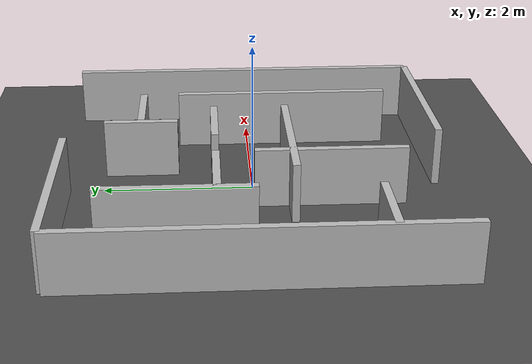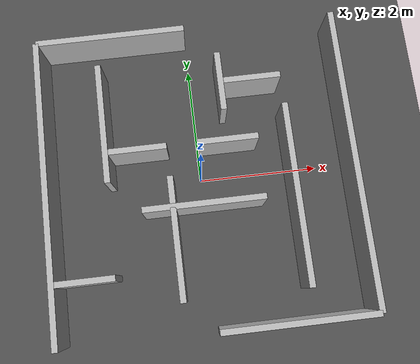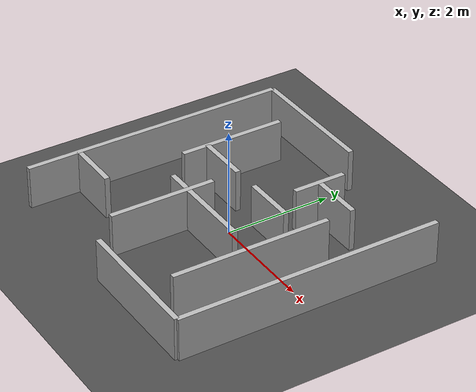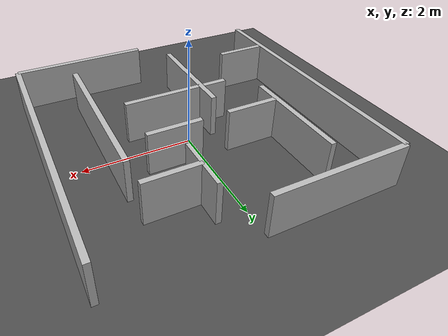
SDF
<?xml version="1.0" ?>
<sdf version="1.8">
  <world name="complex_5x5_maze">
    <physics name="1ms" type="ignored">
      <max_step_size>0.001</max_step_size>
      <real_time_factor>1.0</real_time_factor>
    </physics>

    <plugin filename="gz-sim-physics-system" name="gz::sim::systems::Physics"/>
    <plugin filename="gz-sim-user-commands-system" name="gz::sim::systems::UserCommands"/>
    <plugin filename="gz-sim-scene-broadcaster-system" name="gz::sim::systems::SceneBroadcaster"/>

    <light type="directional" name="sun">
      <cast_shadows>false</cast_shadows>
      <pose>0 0 10 0 0 0</pose>
      <direction>-0.5 0.1 -0.9</direction>
    </light>

    <model name="ground_plane">
      <static>true</static>
      <link name="link">
        <collision name="collision">
          <geometry><plane><normal>0 0 1</normal><size>10 10</size></plane></geometry>
        </collision>
        <visual name="visual">
          <geometry><plane><normal>0 0 1</normal><size>10 10</size></plane></geometry>
          <material><ambient>0.2 0.2 0.2 1</ambient><diffuse>0.3 0.3 0.3 1</diffuse></material>
        </visual>
      </link>
    </model>

    <model name="complex_maze_walls">
      <static>true</static>
      <pose>0 0 0.4 0 0 0</pose> <link name="outer_s"><pose>1.25 -2.5 0 0 0 0</pose><collision name="c"><geometry><box><size>2.5 0.1 0.8</size></box></geometry></collision><visual name="v"><geometry><box><size>2.5 0.1 0.8</size></box></geometry></visual></link>
      <link name="outer_n"><pose>-1.25 2.5 0 0 0 0</pose><collision name="c"><geometry><box><size>2.5 0.1 0.8</size></box></geometry></collision><visual name="v"><geometry><box><size>2.5 0.1 0.8</size></box></geometry></visual></link>
      <link name="outer_e"><pose>2.5 0 0 0 0 0</pose><collision name="c"><geometry><box><size>0.1 5.0 0.8</size></box></geometry></collision><visual name="v"><geometry><box><size>0.1 5.0 0.8</size></box></geometry></visual></link>
      <link name="outer_w"><pose>-2.5 0 0 0 0 0</pose><collision name="c"><geometry><box><size>0.1 5.0 0.8</size></box></geometry></collision><visual name="v"><geometry><box><size>0.1 5.0 0.8</size></box></geometry></visual></link>

      <link name="v1"><pose>-1.5 1.0 0 0 0 0</pose><visual name="v"><geometry><box><size>0.1 2.0 0.8</size></box></geometry></visual></link>
      <link name="v2"><pose>-0.5 -1.0 0 0 0 0</pose><visual name="v"><geometry><box><size>0.1 2.0 0.8</size></box></geometry></visual></link>
      <link name="v3"><pose>0.5 1.5 0 0 0 0</pose><visual name="v"><geometry><box><size>0.1 1.0 0.8</size></box></geometry></visual></link>
      <link name="v4"><pose>1.5 -0.5 0 0 0 0</pose><visual name="v"><geometry><box><size>0.1 3.0 0.8</size></box></geometry></visual></link>

      <link name="h1"><pose>-1.0 0.5 0 0 0 1.57</pose><visual name="v"><geometry><box><size>0.1 1.0 0.8</size></box></geometry></visual></link>
      <link name="h2"><pose>0.0 -0.5 0 0 0 1.57</pose><visual name="v"><geometry><box><size>0.1 2.0 0.8</size></box></geometry></visual></link>
      <link name="h3"><pose>1.0 1.5 0 0 0 1.57</pose><visual name="v"><geometry><box><size>0.1 1.0 0.8</size></box></geometry></visual></link>
      <link name="h4"><pose>-2.0 -1.5 0 0 0 1.57</pose><visual name="v"><geometry><box><size>0.1 1.0 0.8</size></box></geometry></visual></link>
      <link name="h5"><pose>0.5 0.5 0 0 0 1.57</pose><visual name="v"><geometry><box><size>0.1 1.0 0.8</size></box></geometry></visual></link>
    </model>
  </world>
</sdf>
